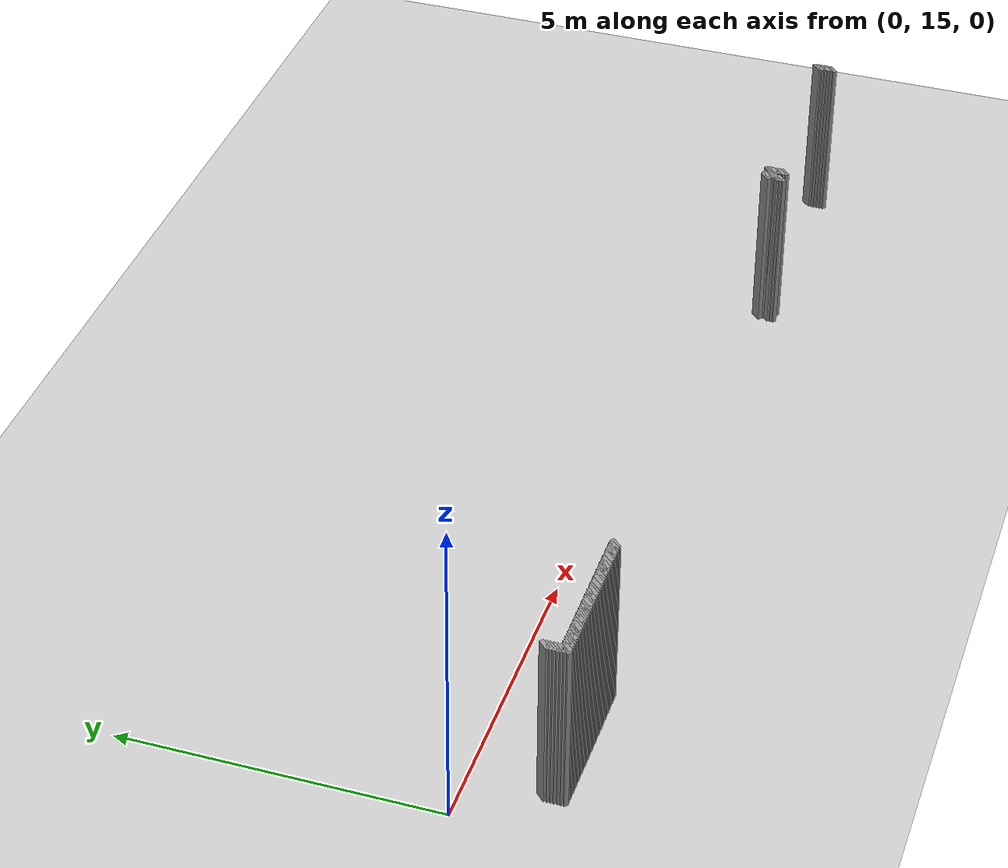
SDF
<sdf version="1.5">
 <world name="default">
  <include><uri>model://ground_plane</uri></include>
  <include><uri>model://sun</uri></include>
  <model name="grey_wall_745">
   <static>1</static>
   <link name="link">
    <pose>0.75 13.9  1.4 0 0 -0.7853981633974549</pose>
    <collision name="collision">
     <geometry><box><size>0.07071067811865529 .2  2.8</size></box></geometry>
    </collision>
    <visual name="visual">
     <cast_shadows>0</cast_shadows>
     <geometry><box><size>0.07071067811865529 .2  2.8</size></box></geometry>
     <material>
      <script>
       <uri>model://grey_wall/materials/scripts</uri>
       <uri>model://grey_wall/materials/textures</uri>
       <name>vrc/grey_wall</name>
      </script>
     </material>
    </visual>
   </link>
  </model>
  <model name="grey_wall_746">
   <static>1</static>
   <link name="link">
    <pose>12.8 13.9  1.4 0 0 -0.7853981633974483</pose>
    <collision name="collision">
     <geometry><box><size>0.07071067811865576 .2  2.8</size></box></geometry>
    </collision>
    <visual name="visual">
     <cast_shadows>0</cast_shadows>
     <geometry><box><size>0.07071067811865576 .2  2.8</size></box></geometry>
     <material>
      <script>
       <uri>model://grey_wall/materials/scripts</uri>
       <uri>model://grey_wall/materials/textures</uri>
       <name>vrc/grey_wall</name>
      </script>
     </material>
    </visual>
   </link>
  </model>
  <model name="grey_wall_747">
   <static>1</static>
   <link name="link">
    <pose>12.850000000000001 13.9  1.4 0 0 -0.7853981633974483</pose>
    <collision name="collision">
     <geometry><box><size>0.07071067811865576 .2  2.8</size></box></geometry>
    </collision>
    <visual name="visual">
     <cast_shadows>0</cast_shadows>
     <geometry><box><size>0.07071067811865576 .2  2.8</size></box></geometry>
     <material>
      <script>
       <uri>model://grey_wall/materials/scripts</uri>
       <uri>model://grey_wall/materials/textures</uri>
       <name>vrc/grey_wall</name>
      </script>
     </material>
    </visual>
   </link>
  </model>
  <model name="grey_wall_748">
   <static>1</static>
   <link name="link">
    <pose>13.0 13.9  1.4 0 0 -0.7853981633974483</pose>
    <collision name="collision">
     <geometry><box><size>0.07071067811865576 .2  2.8</size></box></geometry>
    </collision>
    <visual name="visual">
     <cast_shadows>0</cast_shadows>
     <geometry><box><size>0.07071067811865576 .2  2.8</size></box></geometry>
     <material>
      <script>
       <uri>model://grey_wall/materials/scripts</uri>
       <uri>model://grey_wall/materials/textures</uri>
       <name>vrc/grey_wall</name>
      </script>
     </material>
    </visual>
   </link>
  </model>
  <model name="grey_wall_749">
   <static>1</static>
   <link name="link">
    <pose>16.45 13.9  1.4 0 0 -0.7853981633974838</pose>
    <collision name="collision">
     <geometry><box><size>0.07071067811865325 .2  2.8</size></box></geometry>
    </collision>
    <visual name="visual">
     <cast_shadows>0</cast_shadows>
     <geometry><box><size>0.07071067811865325 .2  2.8</size></box></geometry>
     <material>
      <script>
       <uri>model://grey_wall/materials/scripts</uri>
       <uri>model://grey_wall/materials/textures</uri>
       <name>vrc/grey_wall</name>
      </script>
     </material>
    </visual>
   </link>
  </model>
  <model name="grey_wall_750">
   <static>1</static>
   <link name="link">
    <pose>0.75 13.850000000000001  1.4 0 0 -0.7853981633974549</pose>
    <collision name="collision">
     <geometry><box><size>0.07071067811865529 .2  2.8</size></box></geometry>
    </collision>
    <visual name="visual">
     <cast_shadows>0</cast_shadows>
     <geometry><box><size>0.07071067811865529 .2  2.8</size></box></geometry>
     <material>
      <script>
       <uri>model://grey_wall/materials/scripts</uri>
       <uri>model://grey_wall/materials/textures</uri>
       <name>vrc/grey_wall</name>
      </script>
     </material>
    </visual>
   </link>
  </model>
  <model name="grey_wall_751">
   <static>1</static>
   <link name="link">
    <pose>12.850000000000001 13.850000000000001  1.4 0 0 -0.7853981633974483</pose>
    <collision name="collision">
     <geometry><box><size>0.07071067811865576 .2  2.8</size></box></geometry>
    </collision>
    <visual name="visual">
     <cast_shadows>0</cast_shadows>
     <geometry><box><size>0.07071067811865576 .2  2.8</size></box></geometry>
     <material>
      <script>
       <uri>model://grey_wall/materials/scripts</uri>
       <uri>model://grey_wall/materials/textures</uri>
       <name>vrc/grey_wall</name>
      </script>
     </material>
    </visual>
   </link>
  </model>
  <model name="grey_wall_752">
   <static>1</static>
   <link name="link">
    <pose>13.0 13.850000000000001  1.4 0 0 -0.7853981633974483</pose>
    <collision name="collision">
     <geometry><box><size>0.07071067811865576 .2  2.8</size></box></geometry>
    </collision>
    <visual name="visual">
     <cast_shadows>0</cast_shadows>
     <geometry><box><size>0.07071067811865576 .2  2.8</size></box></geometry>
     <material>
      <script>
       <uri>model://grey_wall/materials/scripts</uri>
       <uri>model://grey_wall/materials/textures</uri>
       <name>vrc/grey_wall</name>
      </script>
     </material>
    </visual>
   </link>
  </model>
  <model name="grey_wall_753">
   <static>1</static>
   <link name="link">
    <pose>16.45 13.850000000000001  1.4 0 0 -0.7853981633974838</pose>
    <collision name="collision">
     <geometry><box><size>0.07071067811865325 .2  2.8</size></box></geometry>
    </collision>
    <visual name="visual">
     <cast_shadows>0</cast_shadows>
     <geometry><box><size>0.07071067811865325 .2  2.8</size></box></geometry>
     <material>
      <script>
       <uri>model://grey_wall/materials/scripts</uri>
       <uri>model://grey_wall/materials/textures</uri>
       <name>vrc/grey_wall</name>
      </script>
     </material>
    </visual>
   </link>
  </model>
  <model name="grey_wall_754">
   <static>1</static>
   <link name="link">
    <pose>0.75 13.8  1.4 0 0 -0.7853981633974549</pose>
    <collision name="collision">
     <geometry><box><size>0.07071067811865529 .2  2.8</size></box></geometry>
    </collision>
    <visual name="visual">
     <cast_shadows>0</cast_shadows>
     <geometry><box><size>0.07071067811865529 .2  2.8</size></box></geometry>
     <material>
      <script>
       <uri>model://grey_wall/materials/scripts</uri>
       <uri>model://grey_wall/materials/textures</uri>
       <name>vrc/grey_wall</name>
      </script>
     </material>
    </visual>
   </link>
  </model>
  <model name="grey_wall_755">
   <static>1</static>
   <link name="link">
    <pose>12.850000000000001 13.8  1.4 0 0 -0.7853981633974483</pose>
    <collision name="collision">
     <geometry><box><size>0.07071067811865576 .2  2.8</size></box></geometry>
    </collision>
    <visual name="visual">
     <cast_shadows>0</cast_shadows>
     <geometry><box><size>0.07071067811865576 .2  2.8</size></box></geometry>
     <material>
      <script>
       <uri>model://grey_wall/materials/scripts</uri>
       <uri>model://grey_wall/materials/textures</uri>
       <name>vrc/grey_wall</name>
      </script>
     </material>
    </visual>
   </link>
  </model>
  <model name="grey_wall_756">
   <static>1</static>
   <link name="link">
    <pose>13.0 13.8  1.4 0 0 -0.7853981633974483</pose>
    <collision name="collision">
     <geometry><box><size>0.07071067811865576 .2  2.8</size></box></geometry>
    </collision>
    <visual name="visual">
     <cast_shadows>0</cast_shadows>
     <geometry><box><size>0.07071067811865576 .2  2.8</size></box></geometry>
     <material>
      <script>
       <uri>model://grey_wall/materials/scripts</uri>
       <uri>model://grey_wall/materials/textures</uri>
       <name>vrc/grey_wall</name>
      </script>
     </material>
    </visual>
   </link>
  </model>
  <model name="grey_wall_757">
   <static>1</static>
   <link name="link">
    <pose>16.45 13.8  1.4 0 0 -0.7853981633974838</pose>
    <collision name="collision">
     <geometry><box><size>0.07071067811865325 .2  2.8</size></box></geometry>
    </collision>
    <visual name="visual">
     <cast_shadows>0</cast_shadows>
     <geometry><box><size>0.07071067811865325 .2  2.8</size></box></geometry>
     <material>
      <script>
       <uri>model://grey_wall/materials/scripts</uri>
       <uri>model://grey_wall/materials/textures</uri>
       <name>vrc/grey_wall</name>
      </script>
     </material>
    </visual>
   </link>
  </model>
  <model name="grey_wall_758">
   <static>1</static>
   <link name="link">
    <pose>0.75 13.75  1.4 0 0 -0.7853981633974549</pose>
    <collision name="collision">
     <geometry><box><size>0.07071067811865529 .2  2.8</size></box></geometry>
    </collision>
    <visual name="visual">
     <cast_shadows>0</cast_shadows>
     <geometry><box><size>0.07071067811865529 .2  2.8</size></box></geometry>
     <material>
      <script>
       <uri>model://grey_wall/materials/scripts</uri>
       <uri>model://grey_wall/materials/textures</uri>
       <name>vrc/grey_wall</name>
      </script>
     </material>
    </visual>
   </link>
  </model>
  <model name="grey_wall_759">
   <static>1</static>
   <link name="link">
    <pose>12.8 13.75  1.4 0 0 -0.7853981633974483</pose>
    <collision name="collision">
     <geometry><box><size>0.07071067811865576 .2  2.8</size></box></geometry>
    </collision>
    <visual name="visual">
     <cast_shadows>0</cast_shadows>
     <geometry><box><size>0.07071067811865576 .2  2.8</size></box></geometry>
     <material>
      <script>
       <uri>model://grey_wall/materials/scripts</uri>
       <uri>model://grey_wall/materials/textures</uri>
       <name>vrc/grey_wall</name>
      </script>
     </material>
    </visual>
   </link>
  </model>
  <model name="grey_wall_760">
   <static>1</static>
   <link name="link">
    <pose>12.850000000000001 13.75  1.4 0 0 -0.7853981633974483</pose>
    <collision name="collision">
     <geometry><box><size>0.07071067811865576 .2  2.8</size></box></geometry>
    </collision>
    <visual name="visual">
     <cast_shadows>0</cast_shadows>
     <geometry><box><size>0.07071067811865576 .2  2.8</size></box></geometry>
     <material>
      <script>
       <uri>model://grey_wall/materials/scripts</uri>
       <uri>model://grey_wall/materials/textures</uri>
       <name>vrc/grey_wall</name>
      </script>
     </material>
    </visual>
   </link>
  </model>
  <model name="grey_wall_761">
   <static>1</static>
   <link name="link">
    <pose>13.0 13.75  1.4 0 0 -0.7853981633974483</pose>
    <collision name="collision">
     <geometry><box><size>0.07071067811865576 .2  2.8</size></box></geometry>
    </collision>
    <visual name="visual">
     <cast_shadows>0</cast_shadows>
     <geometry><box><size>0.07071067811865576 .2  2.8</size></box></geometry>
     <material>
      <script>
       <uri>model://grey_wall/materials/scripts</uri>
       <uri>model://grey_wall/materials/textures</uri>
       <name>vrc/grey_wall</name>
      </script>
     </material>
    </visual>
   </link>
  </model>
  <model name="grey_wall_762">
   <static>1</static>
   <link name="link">
    <pose>16.45 13.75  1.4 0 0 -0.7853981633974838</pose>
    <collision name="collision">
     <geometry><box><size>0.07071067811865325 .2  2.8</size></box></geometry>
    </collision>
    <visual name="visual">
     <cast_shadows>0</cast_shadows>
     <geometry><box><size>0.07071067811865325 .2  2.8</size></box></geometry>
     <material>
      <script>
       <uri>model://grey_wall/materials/scripts</uri>
       <uri>model://grey_wall/materials/textures</uri>
       <name>vrc/grey_wall</name>
      </script>
     </material>
    </visual>
   </link>
  </model>
  <model name="grey_wall_763">
   <static>1</static>
   <link name="link">
    <pose>0.75 13.700000000000001  1.4 0 0 -0.7853981633974549</pose>
    <collision name="collision">
     <geometry><box><size>0.07071067811865529 .2  2.8</size></box></geometry>
    </collision>
    <visual name="visual">
     <cast_shadows>0</cast_shadows>
     <geometry><box><size>0.07071067811865529 .2  2.8</size></box></geometry>
     <material>
      <script>
       <uri>model://grey_wall/materials/scripts</uri>
       <uri>model://grey_wall/materials/textures</uri>
       <name>vrc/grey_wall</name>
      </script>
     </material>
    </visual>
   </link>
  </model>
  <model name="grey_wall_764">
   <static>1</static>
   <link name="link">
    <pose>12.8 13.700000000000001  1.4 0 0 -0.7853981633974483</pose>
    <collision name="collision">
     <geometry><box><size>0.07071067811865576 .2  2.8</size></box></geometry>
    </collision>
    <visual name="visual">
     <cast_shadows>0</cast_shadows>
     <geometry><box><size>0.07071067811865576 .2  2.8</size></box></geometry>
     <material>
      <script>
       <uri>model://grey_wall/materials/scripts</uri>
       <uri>model://grey_wall/materials/textures</uri>
       <name>vrc/grey_wall</name>
      </script>
     </material>
    </visual>
   </link>
  </model>
  <model name="grey_wall_765">
   <static>1</static>
   <link name="link">
    <pose>13.0 13.700000000000001  1.4 0 0 -0.7853981633974483</pose>
    <collision name="collision">
     <geometry><box><size>0.07071067811865576 .2  2.8</size></box></geometry>
    </collision>
    <visual name="visual">
     <cast_shadows>0</cast_shadows>
     <geometry><box><size>0.07071067811865576 .2  2.8</size></box></geometry>
     <material>
      <script>
       <uri>model://grey_wall/materials/scripts</uri>
       <uri>model://grey_wall/materials/textures</uri>
       <name>vrc/grey_wall</name>
      </script>
     </material>
    </visual>
   </link>
  </model>
  <model name="grey_wall_766">
   <static>1</static>
   <link name="link">
    <pose>16.45 13.700000000000001  1.4 0 0 -0.7853981633974838</pose>
    <collision name="collision">
     <geometry><box><size>0.07071067811865325 .2  2.8</size></box></geometry>
    </collision>
    <visual name="visual">
     <cast_shadows>0</cast_shadows>
     <geometry><box><size>0.07071067811865325 .2  2.8</size></box></geometry>
     <material>
      <script>
       <uri>model://grey_wall/materials/scripts</uri>
       <uri>model://grey_wall/materials/textures</uri>
       <name>vrc/grey_wall</name>
      </script>
     </material>
    </visual>
   </link>
  </model>
  <model name="grey_wall_767">
   <static>1</static>
   <link name="link">
    <pose>0.75 13.65  1.4 0 0 -0.7853981633974549</pose>
    <collision name="collision">
     <geometry><box><size>0.07071067811865529 .2  2.8</size></box></geometry>
    </collision>
    <visual name="visual">
     <cast_shadows>0</cast_shadows>
     <geometry><box><size>0.07071067811865529 .2  2.8</size></box></geometry>
     <material>
      <script>
       <uri>model://grey_wall/materials/scripts</uri>
       <uri>model://grey_wall/materials/textures</uri>
       <name>vrc/grey_wall</name>
      </script>
     </material>
    </visual>
   </link>
  </model>
  <model name="grey_wall_768">
   <static>1</static>
   <link name="link">
    <pose>12.8 13.65  1.4 0 0 -0.7853981633974483</pose>
    <collision name="collision">
     <geometry><box><size>0.07071067811865576 .2  2.8</size></box></geometry>
    </collision>
    <visual name="visual">
     <cast_shadows>0</cast_shadows>
     <geometry><box><size>0.07071067811865576 .2  2.8</size></box></geometry>
     <material>
      <script>
       <uri>model://grey_wall/materials/scripts</uri>
       <uri>model://grey_wall/materials/textures</uri>
       <name>vrc/grey_wall</name>
      </script>
     </material>
    </visual>
   </link>
  </model>
  <model name="grey_wall_769">
   <static>1</static>
   <link name="link">
    <pose>13.0 13.65  1.4 0 0 -0.7853981633974483</pose>
    <collision name="collision">
     <geometry><box><size>0.07071067811865576 .2  2.8</size></box></geometry>
    </collision>
    <visual name="visual">
     <cast_shadows>0</cast_shadows>
     <geometry><box><size>0.07071067811865576 .2  2.8</size></box></geometry>
     <material>
      <script>
       <uri>model://grey_wall/materials/scripts</uri>
       <uri>model://grey_wall/materials/textures</uri>
       <name>vrc/grey_wall</name>
      </script>
     </material>
    </visual>
   </link>
  </model>
  <model name="grey_wall_770">
   <static>1</static>
   <link name="link">
    <pose>16.45 13.65  1.4 0 0 -0.7853981633974838</pose>
    <collision name="collision">
     <geometry><box><size>0.07071067811865325 .2  2.8</size></box></geometry>
    </collision>
    <visual name="visual">
     <cast_shadows>0</cast_shadows>
     <geometry><box><size>0.07071067811865325 .2  2.8</size></box></geometry>
     <material>
      <script>
       <uri>model://grey_wall/materials/scripts</uri>
       <uri>model://grey_wall/materials/textures</uri>
       <name>vrc/grey_wall</name>
      </script>
     </material>
    </visual>
   </link>
  </model>
  <model name="grey_wall_771">
   <static>1</static>
   <link name="link">
    <pose>0.75 13.600000000000001  1.4 0 0 -0.7853981633974549</pose>
    <collision name="collision">
     <geometry><box><size>0.07071067811865529 .2  2.8</size></box></geometry>
    </collision>
    <visual name="visual">
     <cast_shadows>0</cast_shadows>
     <geometry><box><size>0.07071067811865529 .2  2.8</size></box></geometry>
     <material>
      <script>
       <uri>model://grey_wall/materials/scripts</uri>
       <uri>model://grey_wall/materials/textures</uri>
       <name>vrc/grey_wall</name>
      </script>
     </material>
    </visual>
   </link>
  </model>
  <model name="grey_wall_772">
   <static>1</static>
   <link name="link">
    <pose>0.8 13.600000000000001  1.4 0 0 -0.7853981633974549</pose>
    <collision name="collision">
     <geometry><box><size>0.07071067811865529 .2  2.8</size></box></geometry>
    </collision>
    <visual name="visual">
     <cast_shadows>0</cast_shadows>
     <geometry><box><size>0.07071067811865529 .2  2.8</size></box></geometry>
     <material>
      <script>
       <uri>model://grey_wall/materials/scripts</uri>
       <uri>model://grey_wall/materials/textures</uri>
       <name>vrc/grey_wall</name>
      </script>
     </material>
    </visual>
   </link>
  </model>
  <model name="grey_wall_773">
   <static>1</static>
   <link name="link">
    <pose>0.8500000000000001 13.600000000000001  1.4 0 0 -0.7853981633974549</pose>
    <collision name="collision">
     <geometry><box><size>0.07071067811865529 .2  2.8</size></box></geometry>
    </collision>
    <visual name="visual">
     <cast_shadows>0</cast_shadows>
     <geometry><box><size>0.07071067811865529 .2  2.8</size></box></geometry>
     <material>
      <script>
       <uri>model://grey_wall/materials/scripts</uri>
       <uri>model://grey_wall/materials/textures</uri>
       <name>vrc/grey_wall</name>
      </script>
     </material>
    </visual>
   </link>
  </model>
  <model name="grey_wall_774">
   <static>1</static>
   <link name="link">
    <pose>0.9 13.600000000000001  1.4 0 0 -0.7853981633974549</pose>
    <collision name="collision">
     <geometry><box><size>0.07071067811865529 .2  2.8</size></box></geometry>
    </collision>
    <visual name="visual">
     <cast_shadows>0</cast_shadows>
     <geometry><box><size>0.07071067811865529 .2  2.8</size></box></geometry>
     <material>
      <script>
       <uri>model://grey_wall/materials/scripts</uri>
       <uri>model://grey_wall/materials/textures</uri>
       <name>vrc/grey_wall</name>
      </script>
     </material>
    </visual>
   </link>
  </model>
  <model name="grey_wall_775">
   <static>1</static>
   <link name="link">
    <pose>0.9500000000000001 13.600000000000001  1.4 0 0 -0.7853981633974549</pose>
    <collision name="collision">
     <geometry><box><size>0.07071067811865529 .2  2.8</size></box></geometry>
    </collision>
    <visual name="visual">
     <cast_shadows>0</cast_shadows>
     <geometry><box><size>0.07071067811865529 .2  2.8</size></box></geometry>
     <material>
      <script>
       <uri>model://grey_wall/materials/scripts</uri>
       <uri>model://grey_wall/materials/textures</uri>
       <name>vrc/grey_wall</name>
      </script>
     </material>
    </visual>
   </link>
  </model>
  <model name="grey_wall_776">
   <static>1</static>
   <link name="link">
    <pose>1.0 13.600000000000001  1.4 0 0 -0.785398163397456</pose>
    <collision name="collision">
     <geometry><box><size>0.07071067811865521 .2  2.8</size></box></geometry>
    </collision>
    <visual name="visual">
     <cast_shadows>0</cast_shadows>
     <geometry><box><size>0.07071067811865521 .2  2.8</size></box></geometry>
     <material>
      <script>
       <uri>model://grey_wall/materials/scripts</uri>
       <uri>model://grey_wall/materials/textures</uri>
       <name>vrc/grey_wall</name>
      </script>
     </material>
    </visual>
   </link>
  </model>
  <model name="grey_wall_777">
   <static>1</static>
   <link name="link">
    <pose>1.05 13.600000000000001  1.4 0 0 -0.7853981633974572</pose>
    <collision name="collision">
     <geometry><box><size>0.07071067811865513 .2  2.8</size></box></geometry>
    </collision>
    <visual name="visual">
     <cast_shadows>0</cast_shadows>
     <geometry><box><size>0.07071067811865513 .2  2.8</size></box></geometry>
     <material>
      <script>
       <uri>model://grey_wall/materials/scripts</uri>
       <uri>model://grey_wall/materials/textures</uri>
       <name>vrc/grey_wall</name>
      </script>
     </material>
    </visual>
   </link>
  </model>
  <model name="grey_wall_778">
   <static>1</static>
   <link name="link">
    <pose>1.1 13.600000000000001  1.4 0 0 -0.7853981633974572</pose>
    <collision name="collision">
     <geometry><box><size>0.07071067811865513 .2  2.8</size></box></geometry>
    </collision>
    <visual name="visual">
     <cast_shadows>0</cast_shadows>
     <geometry><box><size>0.07071067811865513 .2  2.8</size></box></geometry>
     <material>
      <script>
       <uri>model://grey_wall/materials/scripts</uri>
       <uri>model://grey_wall/materials/textures</uri>
       <name>vrc/grey_wall</name>
      </script>
     </material>
    </visual>
   </link>
  </model>
  <model name="grey_wall_779">
   <static>1</static>
   <link name="link">
    <pose>1.1500000000000001 13.600000000000001  1.4 0 0 -0.7853981633974572</pose>
    <collision name="collision">
     <geometry><box><size>0.07071067811865513 .2  2.8</size></box></geometry>
    </collision>
    <visual name="visual">
     <cast_shadows>0</cast_shadows>
     <geometry><box><size>0.07071067811865513 .2  2.8</size></box></geometry>
     <material>
      <script>
       <uri>model://grey_wall/materials/scripts</uri>
       <uri>model://grey_wall/materials/textures</uri>
       <name>vrc/grey_wall</name>
      </script>
     </material>
    </visual>
   </link>
  </model>
  <model name="grey_wall_780">
   <static>1</static>
   <link name="link">
    <pose>1.2000000000000002 13.600000000000001  1.4 0 0 -0.7853981633974572</pose>
    <collision name="collision">
     <geometry><box><size>0.07071067811865513 .2  2.8</size></box></geometry>
    </collision>
    <visual name="visual">
     <cast_shadows>0</cast_shadows>
     <geometry><box><size>0.07071067811865513 .2  2.8</size></box></geometry>
     <material>
      <script>
       <uri>model://grey_wall/materials/scripts</uri>
       <uri>model://grey_wall/materials/textures</uri>
       <name>vrc/grey_wall</name>
      </script>
     </material>
    </visual>
   </link>
  </model>
  <model name="grey_wall_781">
   <static>1</static>
   <link name="link">
    <pose>1.25 13.600000000000001  1.4 0 0 -0.7853981633974572</pose>
    <collision name="collision">
     <geometry><box><size>0.07071067811865513 .2  2.8</size></box></geometry>
    </collision>
    <visual name="visual">
     <cast_shadows>0</cast_shadows>
     <geometry><box><size>0.07071067811865513 .2  2.8</size></box></geometry>
     <material>
      <script>
       <uri>model://grey_wall/materials/scripts</uri>
       <uri>model://grey_wall/materials/textures</uri>
       <name>vrc/grey_wall</name>
      </script>
     </material>
    </visual>
   </link>
  </model>
  <model name="grey_wall_782">
   <static>1</static>
   <link name="link">
    <pose>1.3 13.600000000000001  1.4 0 0 -0.7853981633974572</pose>
    <collision name="collision">
     <geometry><box><size>0.07071067811865513 .2  2.8</size></box></geometry>
    </collision>
    <visual name="visual">
     <cast_shadows>0</cast_shadows>
     <geometry><box><size>0.07071067811865513 .2  2.8</size></box></geometry>
     <material>
      <script>
       <uri>model://grey_wall/materials/scripts</uri>
       <uri>model://grey_wall/materials/textures</uri>
       <name>vrc/grey_wall</name>
      </script>
     </material>
    </visual>
   </link>
  </model>
  <model name="grey_wall_783">
   <static>1</static>
   <link name="link">
    <pose>1.35 13.600000000000001  1.4 0 0 -0.7853981633974572</pose>
    <collision name="collision">
     <geometry><box><size>0.07071067811865513 .2  2.8</size></box></geometry>
    </collision>
    <visual name="visual">
     <cast_shadows>0</cast_shadows>
     <geometry><box><size>0.07071067811865513 .2  2.8</size></box></geometry>
     <material>
      <script>
       <uri>model://grey_wall/materials/scripts</uri>
       <uri>model://grey_wall/materials/textures</uri>
       <name>vrc/grey_wall</name>
      </script>
     </material>
    </visual>
   </link>
  </model>
  <model name="grey_wall_784">
   <static>1</static>
   <link name="link">
    <pose>1.4000000000000001 13.600000000000001  1.4 0 0 -0.7853981633974572</pose>
    <collision name="collision">
     <geometry><box><size>0.07071067811865513 .2  2.8</size></box></geometry>
    </collision>
    <visual name="visual">
     <cast_shadows>0</cast_shadows>
     <geometry><box><size>0.07071067811865513 .2  2.8</size></box></geometry>
     <material>
      <script>
       <uri>model://grey_wall/materials/scripts</uri>
       <uri>model://grey_wall/materials/textures</uri>
       <name>vrc/grey_wall</name>
      </script>
     </material>
    </visual>
   </link>
  </model>
  <model name="grey_wall_785">
   <static>1</static>
   <link name="link">
    <pose>1.4500000000000002 13.600000000000001  1.4 0 0 -0.7853981633974572</pose>
    <collision name="collision">
     <geometry><box><size>0.07071067811865513 .2  2.8</size></box></geometry>
    </collision>
    <visual name="visual">
     <cast_shadows>0</cast_shadows>
     <geometry><box><size>0.07071067811865513 .2  2.8</size></box></geometry>
     <material>
      <script>
       <uri>model://grey_wall/materials/scripts</uri>
       <uri>model://grey_wall/materials/textures</uri>
       <name>vrc/grey_wall</name>
      </script>
     </material>
    </visual>
   </link>
  </model>
  <model name="grey_wall_786">
   <static>1</static>
   <link name="link">
    <pose>1.5 13.600000000000001  1.4 0 0 -0.7853981633974572</pose>
    <collision name="collision">
     <geometry><box><size>0.07071067811865513 .2  2.8</size></box></geometry>
    </collision>
    <visual name="visual">
     <cast_shadows>0</cast_shadows>
     <geometry><box><size>0.07071067811865513 .2  2.8</size></box></geometry>
     <material>
      <script>
       <uri>model://grey_wall/materials/scripts</uri>
       <uri>model://grey_wall/materials/textures</uri>
       <name>vrc/grey_wall</name>
      </script>
     </material>
    </visual>
   </link>
  </model>
  <model name="grey_wall_787">
   <static>1</static>
   <link name="link">
    <pose>1.55 13.600000000000001  1.4 0 0 -0.7853981633974572</pose>
    <collision name="collision">
     <geometry><box><size>0.07071067811865513 .2  2.8</size></box></geometry>
    </collision>
    <visual name="visual">
     <cast_shadows>0</cast_shadows>
     <geometry><box><size>0.07071067811865513 .2  2.8</size></box></geometry>
     <material>
      <script>
       <uri>model://grey_wall/materials/scripts</uri>
       <uri>model://grey_wall/materials/textures</uri>
       <name>vrc/grey_wall</name>
      </script>
     </material>
    </visual>
   </link>
  </model>
  <model name="grey_wall_788">
   <static>1</static>
   <link name="link">
    <pose>1.6 13.600000000000001  1.4 0 0 -0.7853981633974572</pose>
    <collision name="collision">
     <geometry><box><size>0.07071067811865513 .2  2.8</size></box></geometry>
    </collision>
    <visual name="visual">
     <cast_shadows>0</cast_shadows>
     <geometry><box><size>0.07071067811865513 .2  2.8</size></box></geometry>
     <material>
      <script>
       <uri>model://grey_wall/materials/scripts</uri>
       <uri>model://grey_wall/materials/textures</uri>
       <name>vrc/grey_wall</name>
      </script>
     </material>
    </visual>
   </link>
  </model>
  <model name="grey_wall_789">
   <static>1</static>
   <link name="link">
    <pose>1.6500000000000001 13.600000000000001  1.4 0 0 -0.7853981633974572</pose>
    <collision name="collision">
     <geometry><box><size>0.07071067811865513 .2  2.8</size></box></geometry>
    </collision>
    <visual name="visual">
     <cast_shadows>0</cast_shadows>
     <geometry><box><size>0.07071067811865513 .2  2.8</size></box></geometry>
     <material>
      <script>
       <uri>model://grey_wall/materials/scripts</uri>
       <uri>model://grey_wall/materials/textures</uri>
       <name>vrc/grey_wall</name>
      </script>
     </material>
    </visual>
   </link>
  </model>
  <model name="grey_wall_790">
   <static>1</static>
   <link name="link">
    <pose>1.7000000000000002 13.600000000000001  1.4 0 0 -0.7853981633974572</pose>
    <collision name="collision">
     <geometry><box><size>0.07071067811865513 .2  2.8</size></box></geometry>
    </collision>
    <visual name="visual">
     <cast_shadows>0</cast_shadows>
     <geometry><box><size>0.07071067811865513 .2  2.8</size></box></geometry>
     <material>
      <script>
       <uri>model://grey_wall/materials/scripts</uri>
       <uri>model://grey_wall/materials/textures</uri>
       <name>vrc/grey_wall</name>
      </script>
     </material>
    </visual>
   </link>
  </model>
  <model name="grey_wall_791">
   <static>1</static>
   <link name="link">
    <pose>1.75 13.600000000000001  1.4 0 0 -0.7853981633974572</pose>
    <collision name="collision">
     <geometry><box><size>0.07071067811865513 .2  2.8</size></box></geometry>
    </collision>
    <visual name="visual">
     <cast_shadows>0</cast_shadows>
     <geometry><box><size>0.07071067811865513 .2  2.8</size></box></geometry>
     <material>
      <script>
       <uri>model://grey_wall/materials/scripts</uri>
       <uri>model://grey_wall/materials/textures</uri>
       <name>vrc/grey_wall</name>
      </script>
     </material>
    </visual>
   </link>
  </model>
  <model name="grey_wall_792">
   <static>1</static>
   <link name="link">
    <pose>1.8 13.600000000000001  1.4 0 0 -0.7853981633974572</pose>
    <collision name="collision">
     <geometry><box><size>0.07071067811865513 .2  2.8</size></box></geometry>
    </collision>
    <visual name="visual">
     <cast_shadows>0</cast_shadows>
     <geometry><box><size>0.07071067811865513 .2  2.8</size></box></geometry>
     <material>
      <script>
       <uri>model://grey_wall/materials/scripts</uri>
       <uri>model://grey_wall/materials/textures</uri>
       <name>vrc/grey_wall</name>
      </script>
     </material>
    </visual>
   </link>
  </model>
  <model name="grey_wall_793">
   <static>1</static>
   <link name="link">
    <pose>1.85 13.600000000000001  1.4 0 0 -0.7853981633974572</pose>
    <collision name="collision">
     <geometry><box><size>0.07071067811865513 .2  2.8</size></box></geometry>
    </collision>
    <visual name="visual">
     <cast_shadows>0</cast_shadows>
     <geometry><box><size>0.07071067811865513 .2  2.8</size></box></geometry>
     <material>
      <script>
       <uri>model://grey_wall/materials/scripts</uri>
       <uri>model://grey_wall/materials/textures</uri>
       <name>vrc/grey_wall</name>
      </script>
     </material>
    </visual>
   </link>
  </model>
  <model name="grey_wall_794">
   <static>1</static>
   <link name="link">
    <pose>1.9000000000000001 13.600000000000001  1.4 0 0 -0.7853981633974572</pose>
    <collision name="collision">
     <geometry><box><size>0.07071067811865513 .2  2.8</size></box></geometry>
    </collision>
    <visual name="visual">
     <cast_shadows>0</cast_shadows>
     <geometry><box><size>0.07071067811865513 .2  2.8</size></box></geometry>
     <material>
      <script>
       <uri>model://grey_wall/materials/scripts</uri>
       <uri>model://grey_wall/materials/textures</uri>
       <name>vrc/grey_wall</name>
      </script>
     </material>
    </visual>
   </link>
  </model>
  <model name="grey_wall_795">
   <static>1</static>
   <link name="link">
    <pose>1.9500000000000002 13.600000000000001  1.4 0 0 -0.7853981633974572</pose>
    <collision name="collision">
     <geometry><box><size>0.07071067811865513 .2  2.8</size></box></geometry>
    </collision>
    <visual name="visual">
     <cast_shadows>0</cast_shadows>
     <geometry><box><size>0.07071067811865513 .2  2.8</size></box></geometry>
     <material>
      <script>
       <uri>model://grey_wall/materials/scripts</uri>
       <uri>model://grey_wall/materials/textures</uri>
       <name>vrc/grey_wall</name>
      </script>
     </material>
    </visual>
   </link>
  </model>
  <model name="grey_wall_796">
   <static>1</static>
   <link name="link">
    <pose>2.0 13.600000000000001  1.4 0 0 -0.7853981633974572</pose>
    <collision name="collision">
     <geometry><box><size>0.07071067811865513 .2  2.8</size></box></geometry>
    </collision>
    <visual name="visual">
     <cast_shadows>0</cast_shadows>
     <geometry><box><size>0.07071067811865513 .2  2.8</size></box></geometry>
     <material>
      <script>
       <uri>model://grey_wall/materials/scripts</uri>
       <uri>model://grey_wall/materials/textures</uri>
       <name>vrc/grey_wall</name>
      </script>
     </material>
    </visual>
   </link>
  </model>
  <model name="grey_wall_797">
   <static>1</static>
   <link name="link">
    <pose>2.0500000000000003 13.600000000000001  1.4 0 0 -0.7853981633974572</pose>
    <collision name="collision">
     <geometry><box><size>0.07071067811865513 .2  2.8</size></box></geometry>
    </collision>
    <visual name="visual">
     <cast_shadows>0</cast_shadows>
     <geometry><box><size>0.07071067811865513 .2  2.8</size></box></geometry>
     <material>
      <script>
       <uri>model://grey_wall/materials/scripts</uri>
       <uri>model://grey_wall/materials/textures</uri>
       <name>vrc/grey_wall</name>
      </script>
     </material>
    </visual>
   </link>
  </model>
  <model name="grey_wall_798">
   <static>1</static>
   <link name="link">
    <pose>2.1 13.600000000000001  1.4 0 0 -0.7853981633974572</pose>
    <collision name="collision">
     <geometry><box><size>0.07071067811865513 .2  2.8</size></box></geometry>
    </collision>
    <visual name="visual">
     <cast_shadows>0</cast_shadows>
     <geometry><box><size>0.07071067811865513 .2  2.8</size></box></geometry>
     <material>
      <script>
       <uri>model://grey_wall/materials/scripts</uri>
       <uri>model://grey_wall/materials/textures</uri>
       <name>vrc/grey_wall</name>
      </script>
     </material>
    </visual>
   </link>
  </model>
  <model name="grey_wall_799">
   <static>1</static>
   <link name="link">
    <pose>2.15 13.600000000000001  1.4 0 0 -0.7853981633974572</pose>
    <collision name="collision">
     <geometry><box><size>0.07071067811865513 .2  2.8</size></box></geometry>
    </collision>
    <visual name="visual">
     <cast_shadows>0</cast_shadows>
     <geometry><box><size>0.07071067811865513 .2  2.8</size></box></geometry>
     <material>
      <script>
       <uri>model://grey_wall/materials/scripts</uri>
       <uri>model://grey_wall/materials/textures</uri>
       <name>vrc/grey_wall</name>
      </script>
     </material>
    </visual>
   </link>
  </model>
  <model name="grey_wall_800">
   <static>1</static>
   <link name="link">
    <pose>2.2 13.600000000000001  1.4 0 0 -0.7853981633974572</pose>
    <collision name="collision">
     <geometry><box><size>0.07071067811865513 .2  2.8</size></box></geometry>
    </collision>
    <visual name="visual">
     <cast_shadows>0</cast_shadows>
     <geometry><box><size>0.07071067811865513 .2  2.8</size></box></geometry>
     <material>
      <script>
       <uri>model://grey_wall/materials/scripts</uri>
       <uri>model://grey_wall/materials/textures</uri>
       <name>vrc/grey_wall</name>
      </script>
     </material>
    </visual>
   </link>
  </model>
  <model name="grey_wall_801">
   <static>1</static>
   <link name="link">
    <pose>2.25 13.600000000000001  1.4 0 0 -0.7853981633974572</pose>
    <collision name="collision">
     <geometry><box><size>0.07071067811865513 .2  2.8</size></box></geometry>
    </collision>
    <visual name="visual">
     <cast_shadows>0</cast_shadows>
     <geometry><box><size>0.07071067811865513 .2  2.8</size></box></geometry>
     <material>
      <script>
       <uri>model://grey_wall/materials/scripts</uri>
       <uri>model://grey_wall/materials/textures</uri>
       <name>vrc/grey_wall</name>
      </script>
     </material>
    </visual>
   </link>
  </model>
  <model name="grey_wall_802">
   <static>1</static>
   <link name="link">
    <pose>2.3000000000000003 13.600000000000001  1.4 0 0 -0.7853981633974572</pose>
    <collision name="collision">
     <geometry><box><size>0.07071067811865513 .2  2.8</size></box></geometry>
    </collision>
    <visual name="visual">
     <cast_shadows>0</cast_shadows>
     <geometry><box><size>0.07071067811865513 .2  2.8</size></box></geometry>
     <material>
      <script>
       <uri>model://grey_wall/materials/scripts</uri>
       <uri>model://grey_wall/materials/textures</uri>
       <name>vrc/grey_wall</name>
      </script>
     </material>
    </visual>
   </link>
  </model>
  <model name="grey_wall_803">
   <static>1</static>
   <link name="link">
    <pose>2.35 13.600000000000001  1.4 0 0 -0.7853981633974572</pose>
    <collision name="collision">
     <geometry><box><size>0.07071067811865513 .2  2.8</size></box></geometry>
    </collision>
    <visual name="visual">
     <cast_shadows>0</cast_shadows>
     <geometry><box><size>0.07071067811865513 .2  2.8</size></box></geometry>
     <material>
      <script>
       <uri>model://grey_wall/materials/scripts</uri>
       <uri>model://grey_wall/materials/textures</uri>
       <name>vrc/grey_wall</name>
      </script>
     </material>
    </visual>
   </link>
  </model>
  <model name="grey_wall_804">
   <static>1</static>
   <link name="link">
    <pose>2.4000000000000004 13.600000000000001  1.4 0 0 -0.7853981633974572</pose>
    <collision name="collision">
     <geometry><box><size>0.07071067811865513 .2  2.8</size></box></geometry>
    </collision>
    <visual name="visual">
     <cast_shadows>0</cast_shadows>
     <geometry><box><size>0.07071067811865513 .2  2.8</size></box></geometry>
     <material>
      <script>
       <uri>model://grey_wall/materials/scripts</uri>
       <uri>model://grey_wall/materials/textures</uri>
       <name>vrc/grey_wall</name>
      </script>
     </material>
    </visual>
   </link>
  </model>
  <model name="grey_wall_805">
   <static>1</static>
   <link name="link">
    <pose>2.45 13.600000000000001  1.4 0 0 -0.7853981633974572</pose>
    <collision name="collision">
     <geometry><box><size>0.07071067811865513 .2  2.8</size></box></geometry>
    </collision>
    <visual name="visual">
     <cast_shadows>0</cast_shadows>
     <geometry><box><size>0.07071067811865513 .2  2.8</size></box></geometry>
     <material>
      <script>
       <uri>model://grey_wall/materials/scripts</uri>
       <uri>model://grey_wall/materials/textures</uri>
       <name>vrc/grey_wall</name>
      </script>
     </material>
    </visual>
   </link>
  </model>
  <model name="grey_wall_806">
   <static>1</static>
   <link name="link">
    <pose>2.5 13.600000000000001  1.4 0 0 -0.7853981633974572</pose>
    <collision name="collision">
     <geometry><box><size>0.07071067811865513 .2  2.8</size></box></geometry>
    </collision>
    <visual name="visual">
     <cast_shadows>0</cast_shadows>
     <geometry><box><size>0.07071067811865513 .2  2.8</size></box></geometry>
     <material>
      <script>
       <uri>model://grey_wall/materials/scripts</uri>
       <uri>model://grey_wall/materials/textures</uri>
       <name>vrc/grey_wall</name>
      </script>
     </material>
    </visual>
   </link>
  </model>
  <model name="grey_wall_807">
   <static>1</static>
   <link name="link">
    <pose>2.5500000000000003 13.600000000000001  1.4 0 0 -0.7853981633974572</pose>
    <collision name="collision">
     <geometry><box><size>0.07071067811865513 .2  2.8</size></box></geometry>
    </collision>
    <visual name="visual">
     <cast_shadows>0</cast_shadows>
     <geometry><box><size>0.07071067811865513 .2  2.8</size></box></geometry>
     <material>
      <script>
       <uri>model://grey_wall/materials/scripts</uri>
       <uri>model://grey_wall/materials/textures</uri>
       <name>vrc/grey_wall</name>
      </script>
     </material>
    </visual>
   </link>
  </model>
  <model name="grey_wall_808">
   <static>1</static>
   <link name="link">
    <pose>2.6 13.600000000000001  1.4 0 0 -0.7853981633974572</pose>
    <collision name="collision">
     <geometry><box><size>0.07071067811865513 .2  2.8</size></box></geometry>
    </collision>
    <visual name="visual">
     <cast_shadows>0</cast_shadows>
     <geometry><box><size>0.07071067811865513 .2  2.8</size></box></geometry>
     <material>
      <script>
       <uri>model://grey_wall/materials/scripts</uri>
       <uri>model://grey_wall/materials/textures</uri>
       <name>vrc/grey_wall</name>
      </script>
     </material>
    </visual>
   </link>
  </model>
  <model name="grey_wall_809">
   <static>1</static>
   <link name="link">
    <pose>2.6500000000000004 13.600000000000001  1.4 0 0 -0.7853981633974572</pose>
    <collision name="collision">
     <geometry><box><size>0.07071067811865513 .2  2.8</size></box></geometry>
    </collision>
    <visual name="visual">
     <cast_shadows>0</cast_shadows>
     <geometry><box><size>0.07071067811865513 .2  2.8</size></box></geometry>
     <material>
      <script>
       <uri>model://grey_wall/materials/scripts</uri>
       <uri>model://grey_wall/materials/textures</uri>
       <name>vrc/grey_wall</name>
      </script>
     </material>
    </visual>
   </link>
  </model>
  <model name="grey_wall_810">
   <static>1</static>
   <link name="link">
    <pose>2.7 13.600000000000001  1.4 0 0 -0.7853981633974572</pose>
    <collision name="collision">
     <geometry><box><size>0.07071067811865513 .2  2.8</size></box></geometry>
    </collision>
    <visual name="visual">
     <cast_shadows>0</cast_shadows>
     <geometry><box><size>0.07071067811865513 .2  2.8</size></box></geometry>
     <material>
      <script>
       <uri>model://grey_wall/materials/scripts</uri>
       <uri>model://grey_wall/materials/textures</uri>
       <name>vrc/grey_wall</name>
      </script>
     </material>
    </visual>
   </link>
  </model>
  <model name="grey_wall_811">
   <static>1</static>
   <link name="link">
    <pose>2.75 13.600000000000001  1.4 0 0 -0.7853981633974572</pose>
    <collision name="collision">
     <geometry><box><size>0.07071067811865513 .2  2.8</size></box></geometry>
    </collision>
    <visual name="visual">
     <cast_shadows>0</cast_shadows>
     <geometry><box><size>0.07071067811865513 .2  2.8</size></box></geometry>
     <material>
      <script>
       <uri>model://grey_wall/materials/scripts</uri>
       <uri>model://grey_wall/materials/textures</uri>
       <name>vrc/grey_wall</name>
      </script>
     </material>
    </visual>
   </link>
  </model>
  <model name="grey_wall_812">
   <static>1</static>
   <link name="link">
    <pose>2.8000000000000003 13.600000000000001  1.4 0 0 -0.7853981633974572</pose>
    <collision name="collision">
     <geometry><box><size>0.07071067811865513 .2  2.8</size></box></geometry>
    </collision>
    <visual name="visual">
     <cast_shadows>0</cast_shadows>
     <geometry><box><size>0.07071067811865513 .2  2.8</size></box></geometry>
     <material>
      <script>
       <uri>model://grey_wall/materials/scripts</uri>
       <uri>model://grey_wall/materials/textures</uri>
       <name>vrc/grey_wall</name>
      </script>
     </material>
    </visual>
   </link>
  </model>
  <model name="grey_wall_813">
   <static>1</static>
   <link name="link">
    <pose>2.85 13.600000000000001  1.4 0 0 -0.7853981633974572</pose>
    <collision name="collision">
     <geometry><box><size>0.07071067811865513 .2  2.8</size></box></geometry>
    </collision>
    <visual name="visual">
     <cast_shadows>0</cast_shadows>
     <geometry><box><size>0.07071067811865513 .2  2.8</size></box></geometry>
     <material>
      <script>
       <uri>model://grey_wall/materials/scripts</uri>
       <uri>model://grey_wall/materials/textures</uri>
       <name>vrc/grey_wall</name>
      </script>
     </material>
    </visual>
   </link>
  </model>
  <model name="grey_wall_814">
   <static>1</static>
   <link name="link">
    <pose>2.9000000000000004 13.600000000000001  1.4 0 0 -0.7853981633974572</pose>
    <collision name="collision">
     <geometry><box><size>0.07071067811865513 .2  2.8</size></box></geometry>
    </collision>
    <visual name="visual">
     <cast_shadows>0</cast_shadows>
     <geometry><box><size>0.07071067811865513 .2  2.8</size></box></geometry>
     <material>
      <script>
       <uri>model://grey_wall/materials/scripts</uri>
       <uri>model://grey_wall/materials/textures</uri>
       <name>vrc/grey_wall</name>
      </script>
     </material>
    </visual>
   </link>
  </model>
  <model name="grey_wall_815">
   <static>1</static>
   <link name="link">
    <pose>2.95 13.600000000000001  1.4 0 0 -0.7853981633974572</pose>
    <collision name="collision">
     <geometry><box><size>0.07071067811865513 .2  2.8</size></box></geometry>
    </collision>
    <visual name="visual">
     <cast_shadows>0</cast_shadows>
     <geometry><box><size>0.07071067811865513 .2  2.8</size></box></geometry>
     <material>
      <script>
       <uri>model://grey_wall/materials/scripts</uri>
       <uri>model://grey_wall/materials/textures</uri>
       <name>vrc/grey_wall</name>
      </script>
     </material>
    </visual>
   </link>
  </model>
  <model name="grey_wall_816">
   <static>1</static>
   <link name="link">
    <pose>3.0 13.600000000000001  1.4 0 0 -0.7853981633974572</pose>
    <collision name="collision">
     <geometry><box><size>0.07071067811865513 .2  2.8</size></box></geometry>
    </collision>
    <visual name="visual">
     <cast_shadows>0</cast_shadows>
     <geometry><box><size>0.07071067811865513 .2  2.8</size></box></geometry>
     <material>
      <script>
       <uri>model://grey_wall/materials/scripts</uri>
       <uri>model://grey_wall/materials/textures</uri>
       <name>vrc/grey_wall</name>
      </script>
     </material>
    </visual>
   </link>
  </model>
  <model name="grey_wall_817">
   <static>1</static>
   <link name="link">
    <pose>3.0500000000000003 13.600000000000001  1.4 0 0 -0.7853981633974572</pose>
    <collision name="collision">
     <geometry><box><size>0.07071067811865513 .2  2.8</size></box></geometry>
    </collision>
    <visual name="visual">
     <cast_shadows>0</cast_shadows>
     <geometry><box><size>0.07071067811865513 .2  2.8</size></box></geometry>
     <material>
      <script>
       <uri>model://grey_wall/materials/scripts</uri>
       <uri>model://grey_wall/materials/textures</uri>
       <name>vrc/grey_wall</name>
      </script>
     </material>
    </visual>
   </link>
  </model>
 </world>
</sdf>
